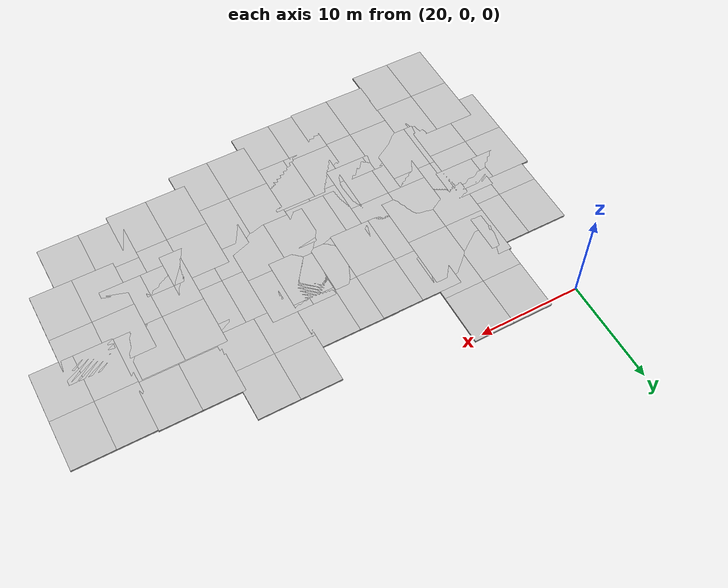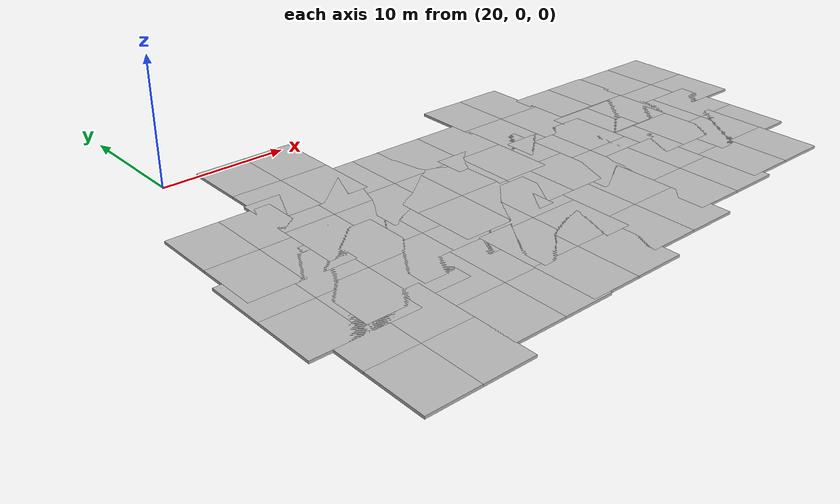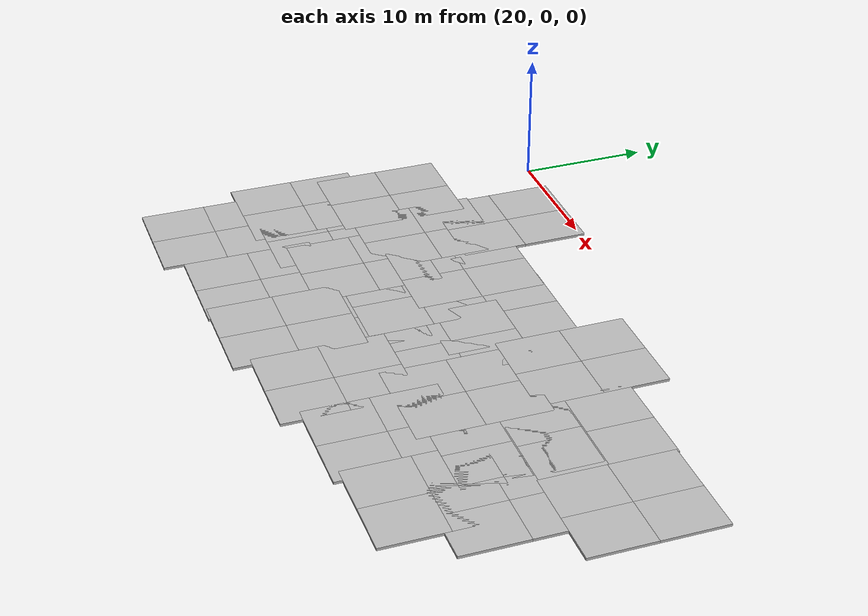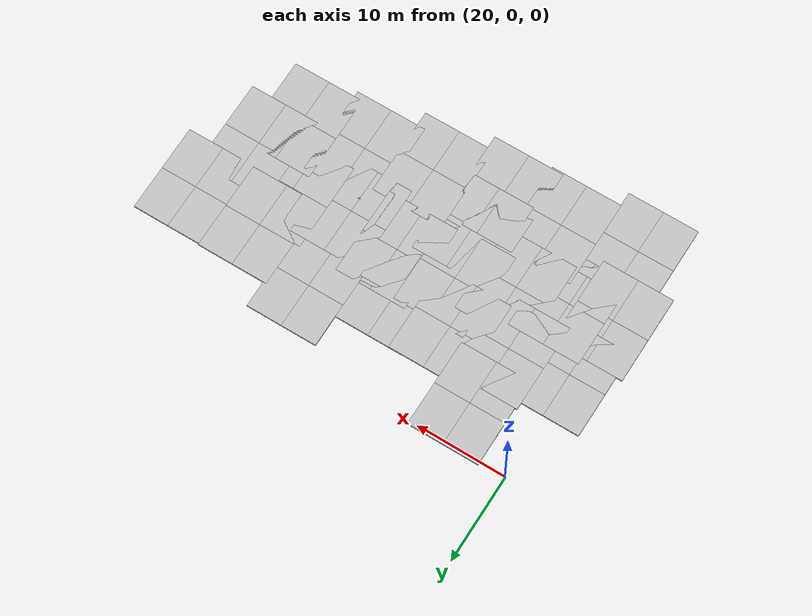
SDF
<sdf version="1.7">
 <world name="default">
  <model name="mud_box_clone_5">
   <static>1</static>
   <link name="link">
    <collision name="collision"><geometry><box><size>8 10 0.2</size></box></geometry></collision>
    <visual name="visual_1">
     <pose>-2 2.5 0 0 -0 0</pose>
     <cast_shadows>0</cast_shadows>
     <geometry><box><size>4 5 0.2</size></box></geometry>
     <material>
      <script>
       <uri>model://mud_box/materials/scripts</uri>
       <uri>model://mud_box/materials/textures</uri>
       <name>vrc/mud</name>
      </script>
     </material>
    </visual>
    <visual name="visual_2">
     <pose>2 2.5 0 0 -0 0</pose>
     <cast_shadows>0</cast_shadows>
     <geometry><box><size>4 5 0.2</size></box></geometry>
     <material>
      <script>
       <uri>model://mud_box/materials/scripts</uri>
       <uri>model://mud_box/materials/textures</uri>
       <name>vrc/mud</name>
      </script>
     </material>
    </visual>
    <visual name="visual_3">
     <pose>2 -2.5 0 0 -0 0</pose>
     <cast_shadows>0</cast_shadows>
     <geometry><box><size>4 5 0.2</size></box></geometry>
     <material>
      <script>
       <uri>model://mud_box/materials/scripts</uri>
       <uri>model://mud_box/materials/textures</uri>
       <name>vrc/mud</name>
      </script>
     </material>
    </visual>
    <visual name="visual_4">
     <pose>-2 -2.5 0 0 -0 0</pose>
     <cast_shadows>0</cast_shadows>
     <geometry><box><size>4 5 0.2</size></box></geometry>
     <material>
      <script>
       <uri>model://mud_box/materials/scripts</uri>
       <uri>model://mud_box/materials/textures</uri>
       <name>vrc/mud</name>
      </script>
     </material>
    </visual>
   </link>
   <pose>20.1809 -12.2756 0 0 -0 0</pose>
  </model>
  <model name="mud_box_clone_6">
   <static>1</static>
   <link name="link">
    <collision name="collision"><geometry><box><size>8 10 0.2</size></box></geometry></collision>
    <visual name="visual_1">
     <pose>-2 2.5 0 0 -0 0</pose>
     <cast_shadows>0</cast_shadows>
     <geometry><box><size>4 5 0.2</size></box></geometry>
     <material>
      <script>
       <uri>model://mud_box/materials/scripts</uri>
       <uri>model://mud_box/materials/textures</uri>
       <name>vrc/mud</name>
      </script>
     </material>
    </visual>
    <visual name="visual_2">
     <pose>2 2.5 0 0 -0 0</pose>
     <cast_shadows>0</cast_shadows>
     <geometry><box><size>4 5 0.2</size></box></geometry>
     <material>
      <script>
       <uri>model://mud_box/materials/scripts</uri>
       <uri>model://mud_box/materials/textures</uri>
       <name>vrc/mud</name>
      </script>
     </material>
    </visual>
    <visual name="visual_3">
     <pose>2 -2.5 0 0 -0 0</pose>
     <cast_shadows>0</cast_shadows>
     <geometry><box><size>4 5 0.2</size></box></geometry>
     <material>
      <script>
       <uri>model://mud_box/materials/scripts</uri>
       <uri>model://mud_box/materials/textures</uri>
       <name>vrc/mud</name>
      </script>
     </material>
    </visual>
    <visual name="visual_4">
     <pose>-2 -2.5 0 0 -0 0</pose>
     <cast_shadows>0</cast_shadows>
     <geometry><box><size>4 5 0.2</size></box></geometry>
     <material>
      <script>
       <uri>model://mud_box/materials/scripts</uri>
       <uri>model://mud_box/materials/textures</uri>
       <name>vrc/mud</name>
      </script>
     </material>
    </visual>
   </link>
   <pose>26.6295 -11.4951 0 0 -0 0</pose>
  </model>
  <model name="mud_box_clone_7">
   <static>1</static>
   <link name="link">
    <collision name="collision"><geometry><box><size>8 10 0.2</size></box></geometry></collision>
    <visual name="visual_1">
     <pose>-2 2.5 0 0 -0 0</pose>
     <cast_shadows>0</cast_shadows>
     <geometry><box><size>4 5 0.2</size></box></geometry>
     <material>
      <script>
       <uri>model://mud_box/materials/scripts</uri>
       <uri>model://mud_box/materials/textures</uri>
       <name>vrc/mud</name>
      </script>
     </material>
    </visual>
    <visual name="visual_2">
     <pose>2 2.5 0 0 -0 0</pose>
     <cast_shadows>0</cast_shadows>
     <geometry><box><size>4 5 0.2</size></box></geometry>
     <material>
      <script>
       <uri>model://mud_box/materials/scripts</uri>
       <uri>model://mud_box/materials/textures</uri>
       <name>vrc/mud</name>
      </script>
     </material>
    </visual>
    <visual name="visual_3">
     <pose>2 -2.5 0 0 -0 0</pose>
     <cast_shadows>0</cast_shadows>
     <geometry><box><size>4 5 0.2</size></box></geometry>
     <material>
      <script>
       <uri>model://mud_box/materials/scripts</uri>
       <uri>model://mud_box/materials/textures</uri>
       <name>vrc/mud</name>
      </script>
     </material>
    </visual>
    <visual name="visual_4">
     <pose>-2 -2.5 0 0 -0 0</pose>
     <cast_shadows>0</cast_shadows>
     <geometry><box><size>4 5 0.2</size></box></geometry>
     <material>
      <script>
       <uri>model://mud_box/materials/scripts</uri>
       <uri>model://mud_box/materials/textures</uri>
       <name>vrc/mud</name>
      </script>
     </material>
    </visual>
   </link>
   <pose>32.6832 -10.4811 0 0 -0 0</pose>
  </model>
  <model name="mud_box_clone_8">
   <static>1</static>
   <link name="link">
    <collision name="collision"><geometry><box><size>8 10 0.2</size></box></geometry></collision>
    <visual name="visual_1">
     <pose>-2 2.5 0 0 -0 0</pose>
     <cast_shadows>0</cast_shadows>
     <geometry><box><size>4 5 0.2</size></box></geometry>
     <material>
      <script>
       <uri>model://mud_box/materials/scripts</uri>
       <uri>model://mud_box/materials/textures</uri>
       <name>vrc/mud</name>
      </script>
     </material>
    </visual>
    <visual name="visual_2">
     <pose>2 2.5 0 0 -0 0</pose>
     <cast_shadows>0</cast_shadows>
     <geometry><box><size>4 5 0.2</size></box></geometry>
     <material>
      <script>
       <uri>model://mud_box/materials/scripts</uri>
       <uri>model://mud_box/materials/textures</uri>
       <name>vrc/mud</name>
      </script>
     </material>
    </visual>
    <visual name="visual_3">
     <pose>2 -2.5 0 0 -0 0</pose>
     <cast_shadows>0</cast_shadows>
     <geometry><box><size>4 5 0.2</size></box></geometry>
     <material>
      <script>
       <uri>model://mud_box/materials/scripts</uri>
       <uri>model://mud_box/materials/textures</uri>
       <name>vrc/mud</name>
      </script>
     </material>
    </visual>
    <visual name="visual_4">
     <pose>-2 -2.5 0 0 -0 0</pose>
     <cast_shadows>0</cast_shadows>
     <geometry><box><size>4 5 0.2</size></box></geometry>
     <material>
      <script>
       <uri>model://mud_box/materials/scripts</uri>
       <uri>model://mud_box/materials/textures</uri>
       <name>vrc/mud</name>
      </script>
     </material>
    </visual>
   </link>
   <pose>26.8669 -4.65584 0 0 -0 0</pose>
  </model>
  <model name="mud_box_clone_16">
   <static>1</static>
   <link name="link">
    <collision name="collision"><geometry><box><size>8 10 0.2</size></box></geometry></collision>
    <visual name="visual_1">
     <pose>-2 2.5 0 0 -0 0</pose>
     <cast_shadows>0</cast_shadows>
     <geometry><box><size>4 5 0.2</size></box></geometry>
     <material>
      <script>
       <uri>model://mud_box/materials/scripts</uri>
       <uri>model://mud_box/materials/textures</uri>
       <name>vrc/mud</name>
      </script>
     </material>
    </visual>
    <visual name="visual_2">
     <pose>2 2.5 0 0 -0 0</pose>
     <cast_shadows>0</cast_shadows>
     <geometry><box><size>4 5 0.2</size></box></geometry>
     <material>
      <script>
       <uri>model://mud_box/materials/scripts</uri>
       <uri>model://mud_box/materials/textures</uri>
       <name>vrc/mud</name>
      </script>
     </material>
    </visual>
    <visual name="visual_3">
     <pose>2 -2.5 0 0 -0 0</pose>
     <cast_shadows>0</cast_shadows>
     <geometry><box><size>4 5 0.2</size></box></geometry>
     <material>
      <script>
       <uri>model://mud_box/materials/scripts</uri>
       <uri>model://mud_box/materials/textures</uri>
       <name>vrc/mud</name>
      </script>
     </material>
    </visual>
    <visual name="visual_4">
     <pose>-2 -2.5 0 0 -0 0</pose>
     <cast_shadows>0</cast_shadows>
     <geometry><box><size>4 5 0.2</size></box></geometry>
     <material>
      <script>
       <uri>model://mud_box/materials/scripts</uri>
       <uri>model://mud_box/materials/textures</uri>
       <name>vrc/mud</name>
      </script>
     </material>
    </visual>
   </link>
   <pose>39.0529 -10.4513 0 0 -0 0</pose>
  </model>
  <model name="mud_box_clone_17">
   <static>1</static>
   <link name="link">
    <collision name="collision"><geometry><box><size>8 10 0.2</size></box></geometry></collision>
    <visual name="visual_1">
     <pose>-2 2.5 0 0 -0 0</pose>
     <cast_shadows>0</cast_shadows>
     <geometry><box><size>4 5 0.2</size></box></geometry>
     <material>
      <script>
       <uri>model://mud_box/materials/scripts</uri>
       <uri>model://mud_box/materials/textures</uri>
       <name>vrc/mud</name>
      </script>
     </material>
    </visual>
    <visual name="visual_2">
     <pose>2 2.5 0 0 -0 0</pose>
     <cast_shadows>0</cast_shadows>
     <geometry><box><size>4 5 0.2</size></box></geometry>
     <material>
      <script>
       <uri>model://mud_box/materials/scripts</uri>
       <uri>model://mud_box/materials/textures</uri>
       <name>vrc/mud</name>
      </script>
     </material>
    </visual>
    <visual name="visual_3">
     <pose>2 -2.5 0 0 -0 0</pose>
     <cast_shadows>0</cast_shadows>
     <geometry><box><size>4 5 0.2</size></box></geometry>
     <material>
      <script>
       <uri>model://mud_box/materials/scripts</uri>
       <uri>model://mud_box/materials/textures</uri>
       <name>vrc/mud</name>
      </script>
     </material>
    </visual>
    <visual name="visual_4">
     <pose>-2 -2.5 0 0 -0 0</pose>
     <cast_shadows>0</cast_shadows>
     <geometry><box><size>4 5 0.2</size></box></geometry>
     <material>
      <script>
       <uri>model://mud_box/materials/scripts</uri>
       <uri>model://mud_box/materials/textures</uri>
       <name>vrc/mud</name>
      </script>
     </material>
    </visual>
   </link>
   <pose>34.9828 -15.1139 0 0 -0 0</pose>
  </model>
  <model name="mud_box_clone_18">
   <static>1</static>
   <link name="link">
    <collision name="collision"><geometry><box><size>8 10 0.2</size></box></geometry></collision>
    <visual name="visual_1">
     <pose>-2 2.5 0 0 -0 0</pose>
     <cast_shadows>0</cast_shadows>
     <geometry><box><size>4 5 0.2</size></box></geometry>
     <material>
      <script>
       <uri>model://mud_box/materials/scripts</uri>
       <uri>model://mud_box/materials/textures</uri>
       <name>vrc/mud</name>
      </script>
     </material>
    </visual>
    <visual name="visual_2">
     <pose>2 2.5 0 0 -0 0</pose>
     <cast_shadows>0</cast_shadows>
     <geometry><box><size>4 5 0.2</size></box></geometry>
     <material>
      <script>
       <uri>model://mud_box/materials/scripts</uri>
       <uri>model://mud_box/materials/textures</uri>
       <name>vrc/mud</name>
      </script>
     </material>
    </visual>
    <visual name="visual_3">
     <pose>2 -2.5 0 0 -0 0</pose>
     <cast_shadows>0</cast_shadows>
     <geometry><box><size>4 5 0.2</size></box></geometry>
     <material>
      <script>
       <uri>model://mud_box/materials/scripts</uri>
       <uri>model://mud_box/materials/textures</uri>
       <name>vrc/mud</name>
      </script>
     </material>
    </visual>
    <visual name="visual_4">
     <pose>-2 -2.5 0 0 -0 0</pose>
     <cast_shadows>0</cast_shadows>
     <geometry><box><size>4 5 0.2</size></box></geometry>
     <material>
      <script>
       <uri>model://mud_box/materials/scripts</uri>
       <uri>model://mud_box/materials/textures</uri>
       <name>vrc/mud</name>
      </script>
     </material>
    </visual>
   </link>
   <pose>29.3659 -17.4504 0 0 -0 0</pose>
  </model>
  <model name="mud_box_clone_19">
   <static>1</static>
   <link name="link">
    <collision name="collision"><geometry><box><size>8 10 0.2</size></box></geometry></collision>
    <visual name="visual_1">
     <pose>-2 2.5 0 0 -0 0</pose>
     <cast_shadows>0</cast_shadows>
     <geometry><box><size>4 5 0.2</size></box></geometry>
     <material>
      <script>
       <uri>model://mud_box/materials/scripts</uri>
       <uri>model://mud_box/materials/textures</uri>
       <name>vrc/mud</name>
      </script>
     </material>
    </visual>
    <visual name="visual_2">
     <pose>2 2.5 0 0 -0 0</pose>
     <cast_shadows>0</cast_shadows>
     <geometry><box><size>4 5 0.2</size></box></geometry>
     <material>
      <script>
       <uri>model://mud_box/materials/scripts</uri>
       <uri>model://mud_box/materials/textures</uri>
       <name>vrc/mud</name>
      </script>
     </material>
    </visual>
    <visual name="visual_3">
     <pose>2 -2.5 0 0 -0 0</pose>
     <cast_shadows>0</cast_shadows>
     <geometry><box><size>4 5 0.2</size></box></geometry>
     <material>
      <script>
       <uri>model://mud_box/materials/scripts</uri>
       <uri>model://mud_box/materials/textures</uri>
       <name>vrc/mud</name>
      </script>
     </material>
    </visual>
    <visual name="visual_4">
     <pose>-2 -2.5 0 0 -0 0</pose>
     <cast_shadows>0</cast_shadows>
     <geometry><box><size>4 5 0.2</size></box></geometry>
     <material>
      <script>
       <uri>model://mud_box/materials/scripts</uri>
       <uri>model://mud_box/materials/textures</uri>
       <name>vrc/mud</name>
      </script>
     </material>
    </visual>
   </link>
   <pose>24.0056 -18.6663 0 0 -0 0</pose>
  </model>
  <model name="mud_box_clone_20">
   <static>1</static>
   <link name="link">
    <collision name="collision"><geometry><box><size>8 10 0.2</size></box></geometry></collision>
    <visual name="visual_1">
     <pose>-2 2.5 0 0 -0 0</pose>
     <cast_shadows>0</cast_shadows>
     <geometry><box><size>4 5 0.2</size></box></geometry>
     <material>
      <script>
       <uri>model://mud_box/materials/scripts</uri>
       <uri>model://mud_box/materials/textures</uri>
       <name>vrc/mud</name>
      </script>
     </material>
    </visual>
    <visual name="visual_2">
     <pose>2 2.5 0 0 -0 0</pose>
     <cast_shadows>0</cast_shadows>
     <geometry><box><size>4 5 0.2</size></box></geometry>
     <material>
      <script>
       <uri>model://mud_box/materials/scripts</uri>
       <uri>model://mud_box/materials/textures</uri>
       <name>vrc/mud</name>
      </script>
     </material>
    </visual>
    <visual name="visual_3">
     <pose>2 -2.5 0 0 -0 0</pose>
     <cast_shadows>0</cast_shadows>
     <geometry><box><size>4 5 0.2</size></box></geometry>
     <material>
      <script>
       <uri>model://mud_box/materials/scripts</uri>
       <uri>model://mud_box/materials/textures</uri>
       <name>vrc/mud</name>
      </script>
     </material>
    </visual>
    <visual name="visual_4">
     <pose>-2 -2.5 0 0 -0 0</pose>
     <cast_shadows>0</cast_shadows>
     <geometry><box><size>4 5 0.2</size></box></geometry>
     <material>
      <script>
       <uri>model://mud_box/materials/scripts</uri>
       <uri>model://mud_box/materials/textures</uri>
       <name>vrc/mud</name>
      </script>
     </material>
    </visual>
   </link>
   <pose>19.5061 -19.4059 0 0 -0 0</pose>
  </model>
  <model name="mud_box_clone_21">
   <static>1</static>
   <link name="link">
    <collision name="collision"><geometry><box><size>8 10 0.2</size></box></geometry></collision>
    <visual name="visual_1">
     <pose>-2 2.5 0 0 -0 0</pose>
     <cast_shadows>0</cast_shadows>
     <geometry><box><size>4 5 0.2</size></box></geometry>
     <material>
      <script>
       <uri>model://mud_box/materials/scripts</uri>
       <uri>model://mud_box/materials/textures</uri>
       <name>vrc/mud</name>
      </script>
     </material>
    </visual>
    <visual name="visual_2">
     <pose>2 2.5 0 0 -0 0</pose>
     <cast_shadows>0</cast_shadows>
     <geometry><box><size>4 5 0.2</size></box></geometry>
     <material>
      <script>
       <uri>model://mud_box/materials/scripts</uri>
       <uri>model://mud_box/materials/textures</uri>
       <name>vrc/mud</name>
      </script>
     </material>
    </visual>
    <visual name="visual_3">
     <pose>2 -2.5 0 0 -0 0</pose>
     <cast_shadows>0</cast_shadows>
     <geometry><box><size>4 5 0.2</size></box></geometry>
     <material>
      <script>
       <uri>model://mud_box/materials/scripts</uri>
       <uri>model://mud_box/materials/textures</uri>
       <name>vrc/mud</name>
      </script>
     </material>
    </visual>
    <visual name="visual_4">
     <pose>-2 -2.5 0 0 -0 0</pose>
     <cast_shadows>0</cast_shadows>
     <geometry><box><size>4 5 0.2</size></box></geometry>
     <material>
      <script>
       <uri>model://mud_box/materials/scripts</uri>
       <uri>model://mud_box/materials/textures</uri>
       <name>vrc/mud</name>
      </script>
     </material>
    </visual>
   </link>
   <pose>41.4562 -14.7087 0 0 -0 0</pose>
  </model>
  <model name="mud_box_clone_25">
   <static>1</static>
   <link name="link">
    <collision name="collision"><geometry><box><size>8 10 0.2</size></box></geometry></collision>
    <visual name="visual_1">
     <pose>-2 2.5 0 0 -0 0</pose>
     <cast_shadows>0</cast_shadows>
     <geometry><box><size>4 5 0.2</size></box></geometry>
     <material>
      <script>
       <uri>model://mud_box/materials/scripts</uri>
       <uri>model://mud_box/materials/textures</uri>
       <name>vrc/mud</name>
      </script>
     </material>
    </visual>
    <visual name="visual_2">
     <pose>2 2.5 0 0 -0 0</pose>
     <cast_shadows>0</cast_shadows>
     <geometry><box><size>4 5 0.2</size></box></geometry>
     <material>
      <script>
       <uri>model://mud_box/materials/scripts</uri>
       <uri>model://mud_box/materials/textures</uri>
       <name>vrc/mud</name>
      </script>
     </material>
    </visual>
    <visual name="visual_3">
     <pose>2 -2.5 0 0 -0 0</pose>
     <cast_shadows>0</cast_shadows>
     <geometry><box><size>4 5 0.2</size></box></geometry>
     <material>
      <script>
       <uri>model://mud_box/materials/scripts</uri>
       <uri>model://mud_box/materials/textures</uri>
       <name>vrc/mud</name>
      </script>
     </material>
    </visual>
    <visual name="visual_4">
     <pose>-2 -2.5 0 0 -0 0</pose>
     <cast_shadows>0</cast_shadows>
     <geometry><box><size>4 5 0.2</size></box></geometry>
     <material>
      <script>
       <uri>model://mud_box/materials/scripts</uri>
       <uri>model://mud_box/materials/textures</uri>
       <name>vrc/mud</name>
      </script>
     </material>
    </visual>
   </link>
   <pose>46.7725 -6.84979 0 0 -0 0</pose>
  </model>
  <model name="mud_box_clone_27">
   <static>1</static>
   <link name="link">
    <collision name="collision"><geometry><box><size>8 10 0.2</size></box></geometry></collision>
    <visual name="visual_1">
     <pose>-2 2.5 0 0 -0 0</pose>
     <cast_shadows>0</cast_shadows>
     <geometry><box><size>4 5 0.2</size></box></geometry>
     <material>
      <script>
       <uri>model://mud_box/materials/scripts</uri>
       <uri>model://mud_box/materials/textures</uri>
       <name>vrc/mud</name>
      </script>
     </material>
    </visual>
    <visual name="visual_2">
     <pose>2 2.5 0 0 -0 0</pose>
     <cast_shadows>0</cast_shadows>
     <geometry><box><size>4 5 0.2</size></box></geometry>
     <material>
      <script>
       <uri>model://mud_box/materials/scripts</uri>
       <uri>model://mud_box/materials/textures</uri>
       <name>vrc/mud</name>
      </script>
     </material>
    </visual>
    <visual name="visual_3">
     <pose>2 -2.5 0 0 -0 0</pose>
     <cast_shadows>0</cast_shadows>
     <geometry><box><size>4 5 0.2</size></box></geometry>
     <material>
      <script>
       <uri>model://mud_box/materials/scripts</uri>
       <uri>model://mud_box/materials/textures</uri>
       <name>vrc/mud</name>
      </script>
     </material>
    </visual>
    <visual name="visual_4">
     <pose>-2 -2.5 0 0 -0 0</pose>
     <cast_shadows>0</cast_shadows>
     <geometry><box><size>4 5 0.2</size></box></geometry>
     <material>
      <script>
       <uri>model://mud_box/materials/scripts</uri>
       <uri>model://mud_box/materials/textures</uri>
       <name>vrc/mud</name>
      </script>
     </material>
    </visual>
   </link>
   <pose>47.5348 -15.8682 0 0 -0 0</pose>
  </model>
  <model name="mud_box_clone_30">
   <static>1</static>
   <link name="link">
    <collision name="collision"><geometry><box><size>8 10 0.2</size></box></geometry></collision>
    <visual name="visual_1">
     <pose>-2 2.5 0 0 -0 0</pose>
     <cast_shadows>0</cast_shadows>
     <geometry><box><size>4 5 0.2</size></box></geometry>
     <material>
      <script>
       <uri>model://mud_box/materials/scripts</uri>
       <uri>model://mud_box/materials/textures</uri>
       <name>vrc/mud</name>
      </script>
     </material>
    </visual>
    <visual name="visual_2">
     <pose>2 2.5 0 0 -0 0</pose>
     <cast_shadows>0</cast_shadows>
     <geometry><box><size>4 5 0.2</size></box></geometry>
     <material>
      <script>
       <uri>model://mud_box/materials/scripts</uri>
       <uri>model://mud_box/materials/textures</uri>
       <name>vrc/mud</name>
      </script>
     </material>
    </visual>
    <visual name="visual_3">
     <pose>2 -2.5 0 0 -0 0</pose>
     <cast_shadows>0</cast_shadows>
     <geometry><box><size>4 5 0.2</size></box></geometry>
     <material>
      <script>
       <uri>model://mud_box/materials/scripts</uri>
       <uri>model://mud_box/materials/textures</uri>
       <name>vrc/mud</name>
      </script>
     </material>
    </visual>
    <visual name="visual_4">
     <pose>-2 -2.5 0 0 -0 0</pose>
     <cast_shadows>0</cast_shadows>
     <geometry><box><size>4 5 0.2</size></box></geometry>
     <material>
      <script>
       <uri>model://mud_box/materials/scripts</uri>
       <uri>model://mud_box/materials/textures</uri>
       <name>vrc/mud</name>
      </script>
     </material>
    </visual>
   </link>
   <pose>53.7721 -14.8996 0 0 -0 0</pose>
  </model>
  <model name="mud_box_clone_31">
   <static>1</static>
   <link name="link">
    <collision name="collision"><geometry><box><size>8 10 0.2</size></box></geometry></collision>
    <visual name="visual_1">
     <pose>-2 2.5 0 0 -0 0</pose>
     <cast_shadows>0</cast_shadows>
     <geometry><box><size>4 5 0.2</size></box></geometry>
     <material>
      <script>
       <uri>model://mud_box/materials/scripts</uri>
       <uri>model://mud_box/materials/textures</uri>
       <name>vrc/mud</name>
      </script>
     </material>
    </visual>
    <visual name="visual_2">
     <pose>2 2.5 0 0 -0 0</pose>
     <cast_shadows>0</cast_shadows>
     <geometry><box><size>4 5 0.2</size></box></geometry>
     <material>
      <script>
       <uri>model://mud_box/materials/scripts</uri>
       <uri>model://mud_box/materials/textures</uri>
       <name>vrc/mud</name>
      </script>
     </material>
    </visual>
    <visual name="visual_3">
     <pose>2 -2.5 0 0 -0 0</pose>
     <cast_shadows>0</cast_shadows>
     <geometry><box><size>4 5 0.2</size></box></geometry>
     <material>
      <script>
       <uri>model://mud_box/materials/scripts</uri>
       <uri>model://mud_box/materials/textures</uri>
       <name>vrc/mud</name>
      </script>
     </material>
    </visual>
    <visual name="visual_4">
     <pose>-2 -2.5 0 0 -0 0</pose>
     <cast_shadows>0</cast_shadows>
     <geometry><box><size>4 5 0.2</size></box></geometry>
     <material>
      <script>
       <uri>model://mud_box/materials/scripts</uri>
       <uri>model://mud_box/materials/textures</uri>
       <name>vrc/mud</name>
      </script>
     </material>
    </visual>
   </link>
   <pose>54.4461 -9.80988 0 0 -0 0</pose>
  </model>
  <model name="mud_box_clone_36">
   <static>1</static>
   <link name="link">
    <collision name="collision"><geometry><box><size>8 10 0.2</size></box></geometry></collision>
    <visual name="visual_1">
     <pose>-2 2.5 0 0 -0 0</pose>
     <cast_shadows>0</cast_shadows>
     <geometry><box><size>4 5 0.2</size></box></geometry>
     <material>
      <script>
       <uri>model://mud_box/materials/scripts</uri>
       <uri>model://mud_box/materials/textures</uri>
       <name>vrc/mud</name>
      </script>
     </material>
    </visual>
    <visual name="visual_2">
     <pose>2 2.5 0 0 -0 0</pose>
     <cast_shadows>0</cast_shadows>
     <geometry><box><size>4 5 0.2</size></box></geometry>
     <material>
      <script>
       <uri>model://mud_box/materials/scripts</uri>
       <uri>model://mud_box/materials/textures</uri>
       <name>vrc/mud</name>
      </script>
     </material>
    </visual>
    <visual name="visual_3">
     <pose>2 -2.5 0 0 -0 0</pose>
     <cast_shadows>0</cast_shadows>
     <geometry><box><size>4 5 0.2</size></box></geometry>
     <material>
      <script>
       <uri>model://mud_box/materials/scripts</uri>
       <uri>model://mud_box/materials/textures</uri>
       <name>vrc/mud</name>
      </script>
     </material>
    </visual>
    <visual name="visual_4">
     <pose>-2 -2.5 0 0 -0 0</pose>
     <cast_shadows>0</cast_shadows>
     <geometry><box><size>4 5 0.2</size></box></geometry>
     <material>
      <script>
       <uri>model://mud_box/materials/scripts</uri>
       <uri>model://mud_box/materials/textures</uri>
       <name>vrc/mud</name>
      </script>
     </material>
    </visual>
   </link>
   <pose>59.4205 -17.32 0 0 -0 0</pose>
  </model>
  <model name="mud_box_clone_37">
   <static>1</static>
   <link name="link">
    <collision name="collision"><geometry><box><size>8 10 0.2</size></box></geometry></collision>
    <visual name="visual_1">
     <pose>-2 2.5 0 0 -0 0</pose>
     <cast_shadows>0</cast_shadows>
     <geometry><box><size>4 5 0.2</size></box></geometry>
     <material>
      <script>
       <uri>model://mud_box/materials/scripts</uri>
       <uri>model://mud_box/materials/textures</uri>
       <name>vrc/mud</name>
      </script>
     </material>
    </visual>
    <visual name="visual_2">
     <pose>2 2.5 0 0 -0 0</pose>
     <cast_shadows>0</cast_shadows>
     <geometry><box><size>4 5 0.2</size></box></geometry>
     <material>
      <script>
       <uri>model://mud_box/materials/scripts</uri>
       <uri>model://mud_box/materials/textures</uri>
       <name>vrc/mud</name>
      </script>
     </material>
    </visual>
    <visual name="visual_3">
     <pose>2 -2.5 0 0 -0 0</pose>
     <cast_shadows>0</cast_shadows>
     <geometry><box><size>4 5 0.2</size></box></geometry>
     <material>
      <script>
       <uri>model://mud_box/materials/scripts</uri>
       <uri>model://mud_box/materials/textures</uri>
       <name>vrc/mud</name>
      </script>
     </material>
    </visual>
    <visual name="visual_4">
     <pose>-2 -2.5 0 0 -0 0</pose>
     <cast_shadows>0</cast_shadows>
     <geometry><box><size>4 5 0.2</size></box></geometry>
     <material>
      <script>
       <uri>model://mud_box/materials/scripts</uri>
       <uri>model://mud_box/materials/textures</uri>
       <name>vrc/mud</name>
      </script>
     </material>
    </visual>
   </link>
   <pose>50.0726 -22.4041 0 0 -0 0</pose>
  </model>
  <model name="mud_box_clone_38">
   <static>1</static>
   <link name="link">
    <collision name="collision"><geometry><box><size>8 10 0.2</size></box></geometry></collision>
    <visual name="visual_1">
     <pose>-2 2.5 0 0 -0 0</pose>
     <cast_shadows>0</cast_shadows>
     <geometry><box><size>4 5 0.2</size></box></geometry>
     <material>
      <script>
       <uri>model://mud_box/materials/scripts</uri>
       <uri>model://mud_box/materials/textures</uri>
       <name>vrc/mud</name>
      </script>
     </material>
    </visual>
    <visual name="visual_2">
     <pose>2 2.5 0 0 -0 0</pose>
     <cast_shadows>0</cast_shadows>
     <geometry><box><size>4 5 0.2</size></box></geometry>
     <material>
      <script>
       <uri>model://mud_box/materials/scripts</uri>
       <uri>model://mud_box/materials/textures</uri>
       <name>vrc/mud</name>
      </script>
     </material>
    </visual>
    <visual name="visual_3">
     <pose>2 -2.5 0 0 -0 0</pose>
     <cast_shadows>0</cast_shadows>
     <geometry><box><size>4 5 0.2</size></box></geometry>
     <material>
      <script>
       <uri>model://mud_box/materials/scripts</uri>
       <uri>model://mud_box/materials/textures</uri>
       <name>vrc/mud</name>
      </script>
     </material>
    </visual>
    <visual name="visual_4">
     <pose>-2 -2.5 0 0 -0 0</pose>
     <cast_shadows>0</cast_shadows>
     <geometry><box><size>4 5 0.2</size></box></geometry>
     <material>
      <script>
       <uri>model://mud_box/materials/scripts</uri>
       <uri>model://mud_box/materials/textures</uri>
       <name>vrc/mud</name>
      </script>
     </material>
    </visual>
   </link>
   <pose>43 -24 0 0 -0 0</pose>
  </model>
  <model name="mud_box_clone_39">
   <static>1</static>
   <link name="link">
    <collision name="collision"><geometry><box><size>8 10 0.2</size></box></geometry></collision>
    <visual name="visual_1">
     <pose>-2 2.5 0 0 -0 0</pose>
     <cast_shadows>0</cast_shadows>
     <geometry><box><size>4 5 0.2</size></box></geometry>
     <material>
      <script>
       <uri>model://mud_box/materials/scripts</uri>
       <uri>model://mud_box/materials/textures</uri>
       <name>vrc/mud</name>
      </script>
     </material>
    </visual>
    <visual name="visual_2">
     <pose>2 2.5 0 0 -0 0</pose>
     <cast_shadows>0</cast_shadows>
     <geometry><box><size>4 5 0.2</size></box></geometry>
     <material>
      <script>
       <uri>model://mud_box/materials/scripts</uri>
       <uri>model://mud_box/materials/textures</uri>
       <name>vrc/mud</name>
      </script>
     </material>
    </visual>
    <visual name="visual_3">
     <pose>2 -2.5 0 0 -0 0</pose>
     <cast_shadows>0</cast_shadows>
     <geometry><box><size>4 5 0.2</size></box></geometry>
     <material>
      <script>
       <uri>model://mud_box/materials/scripts</uri>
       <uri>model://mud_box/materials/textures</uri>
       <name>vrc/mud</name>
      </script>
     </material>
    </visual>
    <visual name="visual_4">
     <pose>-2 -2.5 0 0 -0 0</pose>
     <cast_shadows>0</cast_shadows>
     <geometry><box><size>4 5 0.2</size></box></geometry>
     <material>
      <script>
       <uri>model://mud_box/materials/scripts</uri>
       <uri>model://mud_box/materials/textures</uri>
       <name>vrc/mud</name>
      </script>
     </material>
    </visual>
   </link>
   <pose>35.6749 -25.3988 0 0 -0 0</pose>
  </model>
  <model name="mud_box_clone_40">
   <static>1</static>
   <link name="link">
    <collision name="collision"><geometry><box><size>8 10 0.2</size></box></geometry></collision>
    <visual name="visual_1">
     <pose>-2 2.5 0 0 -0 0</pose>
     <cast_shadows>0</cast_shadows>
     <geometry><box><size>4 5 0.2</size></box></geometry>
     <material>
      <script>
       <uri>model://mud_box/materials/scripts</uri>
       <uri>model://mud_box/materials/textures</uri>
       <name>vrc/mud</name>
      </script>
     </material>
    </visual>
    <visual name="visual_2">
     <pose>2 2.5 0 0 -0 0</pose>
     <cast_shadows>0</cast_shadows>
     <geometry><box><size>4 5 0.2</size></box></geometry>
     <material>
      <script>
       <uri>model://mud_box/materials/scripts</uri>
       <uri>model://mud_box/materials/textures</uri>
       <name>vrc/mud</name>
      </script>
     </material>
    </visual>
    <visual name="visual_3">
     <pose>2 -2.5 0 0 -0 0</pose>
     <cast_shadows>0</cast_shadows>
     <geometry><box><size>4 5 0.2</size></box></geometry>
     <material>
      <script>
       <uri>model://mud_box/materials/scripts</uri>
       <uri>model://mud_box/materials/textures</uri>
       <name>vrc/mud</name>
      </script>
     </material>
    </visual>
    <visual name="visual_4">
     <pose>-2 -2.5 0 0 -0 0</pose>
     <cast_shadows>0</cast_shadows>
     <geometry><box><size>4 5 0.2</size></box></geometry>
     <material>
      <script>
       <uri>model://mud_box/materials/scripts</uri>
       <uri>model://mud_box/materials/textures</uri>
       <name>vrc/mud</name>
      </script>
     </material>
    </visual>
   </link>
   <pose>36.3412 -20.7372 0 0 -0 0</pose>
  </model>
  <model name="mud_box_clone_41">
   <static>1</static>
   <link name="link">
    <collision name="collision"><geometry><box><size>8 10 0.2</size></box></geometry></collision>
    <visual name="visual_1">
     <pose>-2 2.5 0 0 -0 0</pose>
     <cast_shadows>0</cast_shadows>
     <geometry><box><size>4 5 0.2</size></box></geometry>
     <material>
      <script>
       <uri>model://mud_box/materials/scripts</uri>
       <uri>model://mud_box/materials/textures</uri>
       <name>vrc/mud</name>
      </script>
     </material>
    </visual>
    <visual name="visual_2">
     <pose>2 2.5 0 0 -0 0</pose>
     <cast_shadows>0</cast_shadows>
     <geometry><box><size>4 5 0.2</size></box></geometry>
     <material>
      <script>
       <uri>model://mud_box/materials/scripts</uri>
       <uri>model://mud_box/materials/textures</uri>
       <name>vrc/mud</name>
      </script>
     </material>
    </visual>
    <visual name="visual_3">
     <pose>2 -2.5 0 0 -0 0</pose>
     <cast_shadows>0</cast_shadows>
     <geometry><box><size>4 5 0.2</size></box></geometry>
     <material>
      <script>
       <uri>model://mud_box/materials/scripts</uri>
       <uri>model://mud_box/materials/textures</uri>
       <name>vrc/mud</name>
      </script>
     </material>
    </visual>
    <visual name="visual_4">
     <pose>-2 -2.5 0 0 -0 0</pose>
     <cast_shadows>0</cast_shadows>
     <geometry><box><size>4 5 0.2</size></box></geometry>
     <material>
      <script>
       <uri>model://mud_box/materials/scripts</uri>
       <uri>model://mud_box/materials/textures</uri>
       <name>vrc/mud</name>
      </script>
     </material>
    </visual>
   </link>
   <pose>29.049 -25.5468 0 0 -0 0</pose>
  </model>
  <model name="mud_box_clone_42">
   <static>1</static>
   <link name="link">
    <collision name="collision"><geometry><box><size>8 10 0.2</size></box></geometry></collision>
    <visual name="visual_1">
     <pose>-2 2.5 0 0 -0 0</pose>
     <cast_shadows>0</cast_shadows>
     <geometry><box><size>4 5 0.2</size></box></geometry>
     <material>
      <script>
       <uri>model://mud_box/materials/scripts</uri>
       <uri>model://mud_box/materials/textures</uri>
       <name>vrc/mud</name>
      </script>
     </material>
    </visual>
    <visual name="visual_2">
     <pose>2 2.5 0 0 -0 0</pose>
     <cast_shadows>0</cast_shadows>
     <geometry><box><size>4 5 0.2</size></box></geometry>
     <material>
      <script>
       <uri>model://mud_box/materials/scripts</uri>
       <uri>model://mud_box/materials/textures</uri>
       <name>vrc/mud</name>
      </script>
     </material>
    </visual>
    <visual name="visual_3">
     <pose>2 -2.5 0 0 -0 0</pose>
     <cast_shadows>0</cast_shadows>
     <geometry><box><size>4 5 0.2</size></box></geometry>
     <material>
      <script>
       <uri>model://mud_box/materials/scripts</uri>
       <uri>model://mud_box/materials/textures</uri>
       <name>vrc/mud</name>
      </script>
     </material>
    </visual>
    <visual name="visual_4">
     <pose>-2 -2.5 0 0 -0 0</pose>
     <cast_shadows>0</cast_shadows>
     <geometry><box><size>4 5 0.2</size></box></geometry>
     <material>
      <script>
       <uri>model://mud_box/materials/scripts</uri>
       <uri>model://mud_box/materials/textures</uri>
       <name>vrc/mud</name>
      </script>
     </material>
    </visual>
   </link>
   <pose>21.109 -27.1042 0 0 -0 0</pose>
  </model>
  <model name="mud_box_clone_43">
   <static>1</static>
   <link name="link">
    <collision name="collision"><geometry><box><size>8 10 0.2</size></box></geometry></collision>
    <visual name="visual_1">
     <pose>-2 2.5 0 0 -0 0</pose>
     <cast_shadows>0</cast_shadows>
     <geometry><box><size>4 5 0.2</size></box></geometry>
     <material>
      <script>
       <uri>model://mud_box/materials/scripts</uri>
       <uri>model://mud_box/materials/textures</uri>
       <name>vrc/mud</name>
      </script>
     </material>
    </visual>
    <visual name="visual_2">
     <pose>2 2.5 0 0 -0 0</pose>
     <cast_shadows>0</cast_shadows>
     <geometry><box><size>4 5 0.2</size></box></geometry>
     <material>
      <script>
       <uri>model://mud_box/materials/scripts</uri>
       <uri>model://mud_box/materials/textures</uri>
       <name>vrc/mud</name>
      </script>
     </material>
    </visual>
    <visual name="visual_3">
     <pose>2 -2.5 0 0 -0 0</pose>
     <cast_shadows>0</cast_shadows>
     <geometry><box><size>4 5 0.2</size></box></geometry>
     <material>
      <script>
       <uri>model://mud_box/materials/scripts</uri>
       <uri>model://mud_box/materials/textures</uri>
       <name>vrc/mud</name>
      </script>
     </material>
    </visual>
    <visual name="visual_4">
     <pose>-2 -2.5 0 0 -0 0</pose>
     <cast_shadows>0</cast_shadows>
     <geometry><box><size>4 5 0.2</size></box></geometry>
     <material>
      <script>
       <uri>model://mud_box/materials/scripts</uri>
       <uri>model://mud_box/materials/textures</uri>
       <name>vrc/mud</name>
      </script>
     </material>
    </visual>
   </link>
   <pose>57.0969 -21.7813 0 0 -0 0</pose>
  </model>
  <model name="mud_box_clone_44">
   <static>1</static>
   <link name="link">
    <collision name="collision"><geometry><box><size>8 10 0.2</size></box></geometry></collision>
    <visual name="visual_1">
     <pose>-2 2.5 0 0 -0 0</pose>
     <cast_shadows>0</cast_shadows>
     <geometry><box><size>4 5 0.2</size></box></geometry>
     <material>
      <script>
       <uri>model://mud_box/materials/scripts</uri>
       <uri>model://mud_box/materials/textures</uri>
       <name>vrc/mud</name>
      </script>
     </material>
    </visual>
    <visual name="visual_2">
     <pose>2 2.5 0 0 -0 0</pose>
     <cast_shadows>0</cast_shadows>
     <geometry><box><size>4 5 0.2</size></box></geometry>
     <material>
      <script>
       <uri>model://mud_box/materials/scripts</uri>
       <uri>model://mud_box/materials/textures</uri>
       <name>vrc/mud</name>
      </script>
     </material>
    </visual>
    <visual name="visual_3">
     <pose>2 -2.5 0 0 -0 0</pose>
     <cast_shadows>0</cast_shadows>
     <geometry><box><size>4 5 0.2</size></box></geometry>
     <material>
      <script>
       <uri>model://mud_box/materials/scripts</uri>
       <uri>model://mud_box/materials/textures</uri>
       <name>vrc/mud</name>
      </script>
     </material>
    </visual>
    <visual name="visual_4">
     <pose>-2 -2.5 0 0 -0 0</pose>
     <cast_shadows>0</cast_shadows>
     <geometry><box><size>4 5 0.2</size></box></geometry>
     <material>
      <script>
       <uri>model://mud_box/materials/scripts</uri>
       <uri>model://mud_box/materials/textures</uri>
       <name>vrc/mud</name>
      </script>
     </material>
    </visual>
   </link>
   <pose>62.128 -9.91295 0 0 -0 0</pose>
  </model>
 </world>
</sdf>
